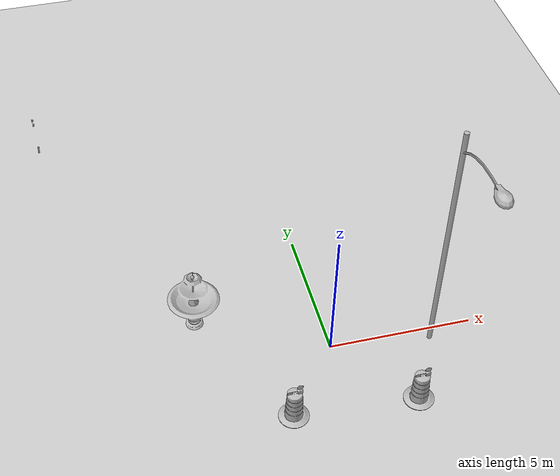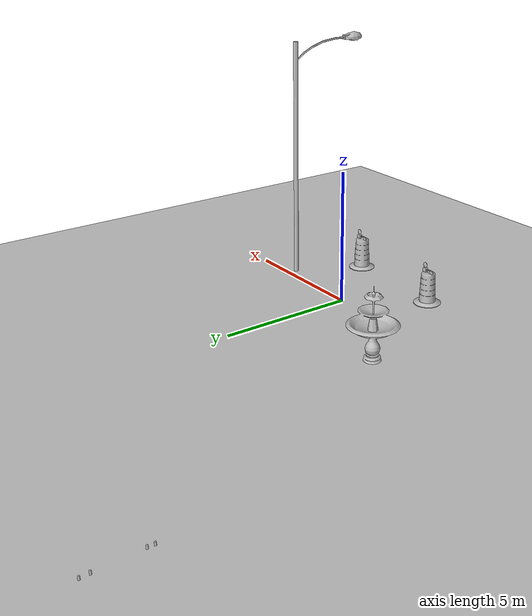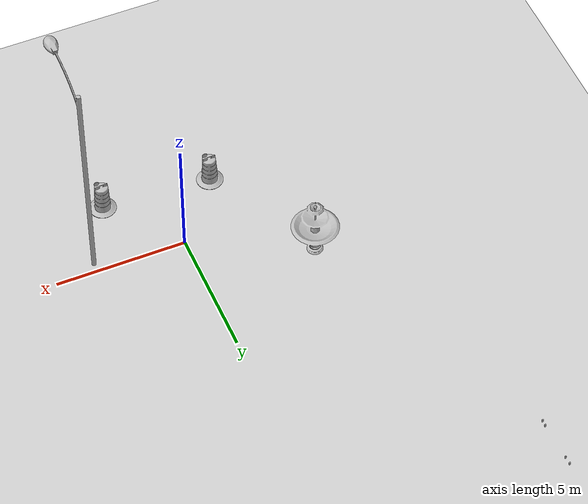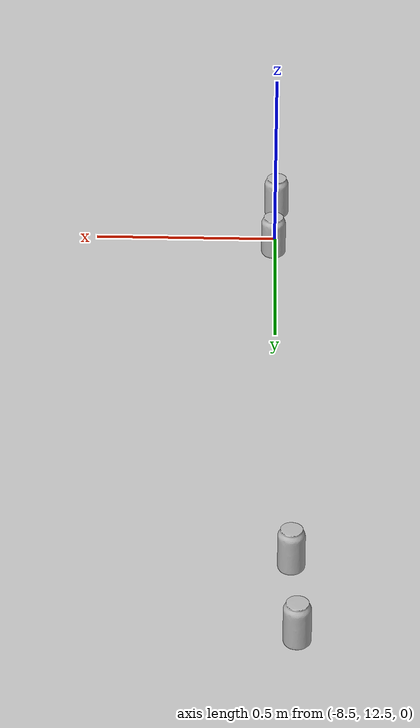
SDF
<sdf version="1.7">
 <world name="default">
  <light name="sun" type="directional">
   <pose>0 0 10 0 -0 0</pose>
   <diffuse>0.8 0.8 0.8 1</diffuse>
   <specular>0.2 0.2 0.2 1</specular>
   <attenuation>
    <range>1000</range>
    <constant>0.9</constant>
    <linear>0.01</linear>
    <quadratic>0.001</quadratic>
   </attenuation>
   <direction>-0.5 0.1 -0.9</direction>
   <spot><inner_angle>0</inner_angle><outer_angle>0</outer_angle><falloff>0</falloff></spot>
  </light>
  <model name="ground_plane">
   <static>1</static>
   <link name="link">
    <collision name="collision">
     <geometry><plane><normal>0 0 1</normal><size>100 100</size></plane></geometry>
     <surface><friction><ode><mu>100</mu><mu2>50</mu2></ode></friction></surface>
    </collision>
    <visual name="visual">
     <cast_shadows>0</cast_shadows>
     <geometry><plane><normal>0 0 1</normal><size>100 100</size></plane></geometry>
     <material>
      <script><uri>file://media/materials/scripts/gazebo.material</uri><name>Gazebo/Grey</name></script>
     </material>
    </visual>
   </link>
  </model>
  <gravity>0 0 -9.8</gravity>
  <magnetic_field>6e-06 2.3e-05 -4.2e-05</magnetic_field>
  <atmosphere type="adiabatic"/>
  <physics type="ode">
   <max_step_size>0.001</max_step_size>
   <real_time_factor>1</real_time_factor>
   <real_time_update_rate>1000</real_time_update_rate>
  </physics>
  <scene><ambient>0.4 0.4 0.4 1</ambient><background>0.7 0.7 0.7 1</background><shadows>1</shadows></scene>
  <audio><device>default</device></audio>
  <spherical_coordinates>
   <surface_model>EARTH_WGS84</surface_model>
   <latitude_deg>0</latitude_deg>
   <longitude_deg>0</longitude_deg>
   <elevation>0</elevation>
   <heading_deg>0</heading_deg>
  </spherical_coordinates>
  <model name="Construction Barrel">
   <link name="link">
    <inertial>
     <pose>0 0 0.4 0 -0 0</pose>
     <mass>500</mass>
     <inertia><ixx>51.2096</ixx><iyy>51.2096</iyy><izz>25</izz><ixy>0</ixy><ixz>0</ixz><iyz>0</iyz></inertia>
    </inertial>
    <collision name="collision">
     <geometry><mesh><uri>model://construction_barrel/meshes/construction_barrel.dae</uri></mesh></geometry>
    </collision>
    <visual name="visual">
     <geometry><mesh><uri>model://construction_barrel/meshes/construction_barrel.dae</uri></mesh></geometry>
    </visual>
   </link>
   <pose>2.1883 -2.74922 0 0 0 -3.3e-05</pose>
  </model>
  <model name="Construction Barrel_clone">
   <link name="link">
    <inertial>
     <pose>0 0 0.4 0 -0 0</pose>
     <mass>500</mass>
     <inertia><ixx>51.2096</ixx><iyy>51.2096</iyy><izz>25</izz><ixy>0</ixy><ixz>0</ixz><iyz>0</iyz></inertia>
    </inertial>
    <collision name="collision">
     <geometry><mesh><uri>model://construction_barrel/meshes/construction_barrel.dae</uri></mesh></geometry>
    </collision>
    <visual name="visual">
     <geometry><mesh><uri>model://construction_barrel/meshes/construction_barrel.dae</uri></mesh></geometry>
    </visual>
   </link>
   <pose>-1.98296 -2.46193 -1e-06 1e-06 -9e-06 -2.6e-05</pose>
  </model>
  <model name="fountain">
   <static>1</static>
   <link name="link">
    <collision name="collision">
     <geometry><mesh><uri>model://fountain/meshes/fountain.dae</uri></mesh></geometry>
    </collision>
    <visual name="visual">
     <geometry><mesh><uri>model://fountain/meshes/fountain.dae</uri></mesh></geometry>
    </visual>
   </link>
   <pose>-4.29292 2.12386 0 0 -0 0</pose>
  </model>
  <model name="Lamp Post">
   <static>1</static>
   <link name="link">
    <collision name="collision">
     <geometry><mesh><uri>model://lamp_post/meshes/lamp_post.dae</uri><scale>3 3 3</scale></mesh></geometry>
    </collision>
    <visual name="visual">
     <geometry><mesh><uri>model://lamp_post/meshes/lamp_post.dae</uri><scale>3 3 3</scale></mesh></geometry>
    </visual>
   </link>
   <pose>3.42623 -0.396023 0 0 -0 0</pose>
  </model>
  <model name="coke_can">
   <link name="link">
    <inertial>
     <pose>0 0 0.06 0 -0 0</pose>
     <mass>0.39</mass>
     <inertia>
      <ixx>0.00055575</ixx>
      <ixy>0</ixy>
      <ixz>0</ixz>
      <iyy>0.00055575</iyy>
      <iyz>0</iyz>
      <izz>0.0001755</izz>
     </inertia>
    </inertial>
    <collision name="collision">
     <pose>0.003937 0.004724 -0.18 0 -0 0</pose>
     <geometry><mesh><uri>model://coke_can/meshes/coke_can.dae</uri></mesh></geometry>
     <surface>
      <friction><ode><mu>1</mu><mu2>1</mu2></ode></friction>
      <contact><ode><kp>1e+07</kp><kd>1</kd><min_depth>0.001</min_depth><max_vel>0.1</max_vel></ode></contact>
     </surface>
    </collision>
    <visual name="visual">
     <pose>0.003937 0.004724 -0.18 0 -0 0</pose>
     <geometry><mesh><uri>model://coke_can/meshes/coke_can.dae</uri></mesh></geometry>
    </visual>
   </link>
   <pose>-8.49495 12.58 -0.002748 -0.060427 0.004061 -0.000539</pose>
  </model>
  <model name="coke_can_clone">
   <link name="link">
    <inertial>
     <pose>0 0 0.06 0 -0 0</pose>
     <mass>0.39</mass>
     <inertia>
      <ixx>0.00055575</ixx>
      <ixy>0</ixy>
      <ixz>0</ixz>
      <iyy>0.00055575</iyy>
      <iyz>0</iyz>
      <izz>0.0001755</izz>
     </inertia>
    </inertial>
    <collision name="collision">
     <pose>0.003937 0.004724 -0.18 0 -0 0</pose>
     <geometry><mesh><uri>model://coke_can/meshes/coke_can.dae</uri></mesh></geometry>
     <surface>
      <friction><ode><mu>1</mu><mu2>1</mu2></ode></friction>
      <contact><ode><kp>1e+07</kp><kd>1</kd><min_depth>0.001</min_depth><max_vel>0.1</max_vel></ode></contact>
     </surface>
    </collision>
    <visual name="visual">
     <pose>0.003937 0.004724 -0.18 0 -0 0</pose>
     <geometry><mesh><uri>model://coke_can/meshes/coke_can.dae</uri></mesh></geometry>
    </visual>
   </link>
   <pose>-8.50337 12.3626 -0.002748 -0.06041 0.004071 -0.000539</pose>
  </model>
  <model name="coke_can_clone_0">
   <link name="link">
    <inertial>
     <pose>0 0 0.06 0 -0 0</pose>
     <mass>0.39</mass>
     <inertia>
      <ixx>0.00055575</ixx>
      <ixy>0</ixy>
      <ixz>0</ixz>
      <iyy>0.00055575</iyy>
      <iyz>0</iyz>
      <izz>0.0001755</izz>
     </inertia>
    </inertial>
    <collision name="collision">
     <pose>0.003937 0.004724 -0.18 0 -0 0</pose>
     <geometry><mesh><uri>model://coke_can/meshes/coke_can.dae</uri></mesh></geometry>
     <surface>
      <friction><ode><mu>1</mu><mu2>1</mu2></ode></friction>
      <contact><ode><kp>1e+07</kp><kd>1</kd><min_depth>0.001</min_depth><max_vel>0.1</max_vel></ode></contact>
     </surface>
    </collision>
    <visual name="visual">
     <pose>0.003937 0.004724 -0.18 0 -0 0</pose>
     <geometry><mesh><uri>model://coke_can/meshes/coke_can.dae</uri></mesh></geometry>
    </visual>
   </link>
   <pose>-8.55221 14.34 -0.002748 -0.060409 0.004073 -0.000538</pose>
  </model>
  <model name="coke_can_clone_1">
   <link name="link">
    <inertial>
     <pose>0 0 0.06 0 -0 0</pose>
     <mass>0.39</mass>
     <inertia>
      <ixx>0.00055575</ixx>
      <ixy>0</ixy>
      <ixz>0</ixz>
      <iyy>0.00055575</iyy>
      <iyz>0</iyz>
      <izz>0.0001755</izz>
     </inertia>
    </inertial>
    <collision name="collision">
     <pose>0.003937 0.004724 -0.18 0 -0 0</pose>
     <geometry><mesh><uri>model://coke_can/meshes/coke_can.dae</uri></mesh></geometry>
     <surface>
      <friction><ode><mu>1</mu><mu2>1</mu2></ode></friction>
      <contact><ode><kp>1e+07</kp><kd>1</kd><min_depth>0.001</min_depth><max_vel>0.1</max_vel></ode></contact>
     </surface>
    </collision>
    <visual name="visual">
     <pose>0.003937 0.004724 -0.18 0 -0 0</pose>
     <geometry><mesh><uri>model://coke_can/meshes/coke_can.dae</uri></mesh></geometry>
    </visual>
   </link>
   <pose>-8.53959 14.0503 -0.002748 -0.060401 0.004078 -0.000539</pose>
  </model>
 </world>
</sdf>
